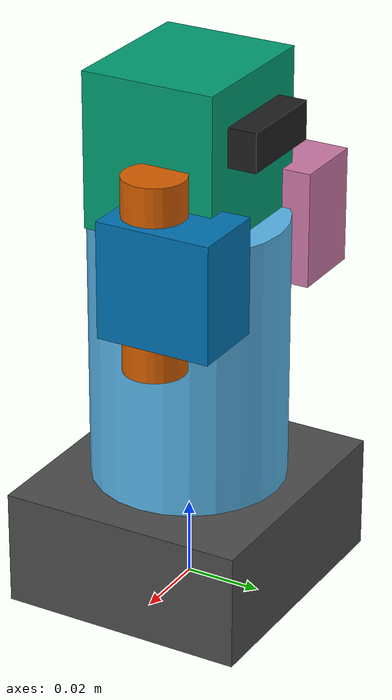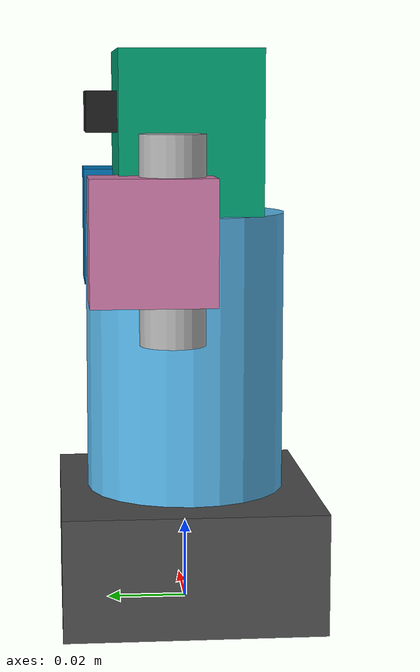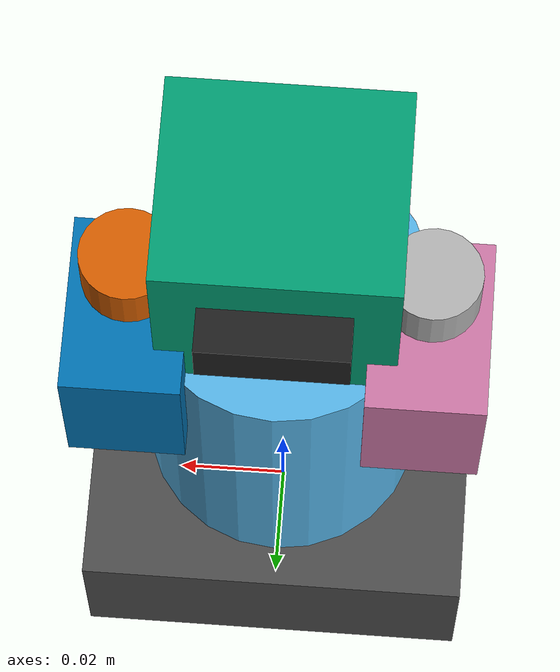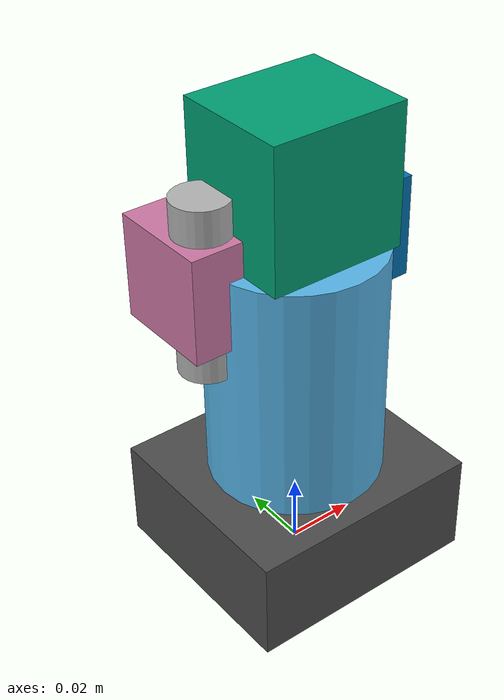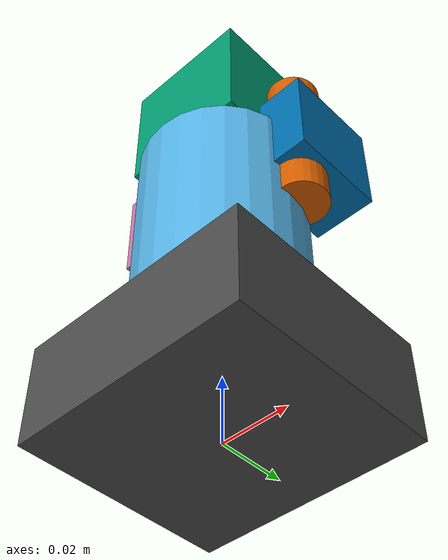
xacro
<?xml version="1.0"?>
<!--
  ElectronBot URDF (xacro 参数化版本)
  使用 materials.xacro 中定义的宏构建，支持参数化调整
-->
<robot name="electronbot" xmlns:xacro="http://www.ros.org/wiki/xacro">
  <xacro:include filename="materials.xacro"/>

  <!-- ============ 根连杆: base_link ============ -->
  <link name="base_link">
    <visual>
      <origin xyz="0 0 0.015" rpy="0 0 0"/>
      <geometry><box size="0.07 0.064 0.03"/></geometry>
      <material name="dark_grey"/>
    </visual>
    <collision>
      <origin xyz="0 0 0.015" rpy="0 0 0"/>
      <geometry><box size="0.07 0.064 0.03"/></geometry>
    </collision>
    <xacro:box_inertial mass="${base_mass}" x="0.07" y="0.064" z="0.03"/>
  </link>

  <!-- ============ 躯干: body (Y轴腰部旋转) ============ -->
  <xacro:robot_joint name="body_joint"
    parent="base_link" child="body"
    axis="0 1 0" lower="-1.5708" upper="1.5708"
    effort="2.0" velocity="3.14"
    origin_xyz="0 0 0.03" origin_rpy="0 0 0"/>

  <link name="body">
    <visual>
      <origin xyz="0 0 0.035" rpy="0 0 0"/>
      <geometry><cylinder radius="0.025" length="0.07"/></geometry>
      <material name="body_color"/>
    </visual>
    <collision>
      <origin xyz="0 0 0.035" rpy="0 0 0"/>
      <geometry><cylinder radius="0.025" length="0.07"/></geometry>
    </collision>
    <xacro:box_inertial mass="${body_mass}" x="0.05" y="0.05" z="0.07"/>
  </link>

  <!-- ============ 头部: head (X轴俯仰) ============ -->
  <xacro:robot_joint name="head_joint"
    parent="body" child="head"
    axis="1 0 0" lower="-0.2618" upper="0.2618"
    effort="1.0" velocity="3.14"
    origin_xyz="0 0 0.07" origin_rpy="0 0 0"/>

  <link name="head">
    <visual>
      <origin xyz="0 0 0.02" rpy="0 0 0"/>
      <geometry><box size="0.04 0.035 0.04"/></geometry>
      <material name="head_color"/>
    </visual>
    <collision>
      <origin xyz="0 0 0.02" rpy="0 0 0"/>
      <geometry><box size="0.04 0.035 0.04"/></geometry>
    </collision>
    <xacro:box_inertial mass="${head_mass}" x="0.04" y="0.035" z="0.04"/>
  </link>

  <!-- D435 相机 (头部前方) -->
  <xacro:d435_camera parent="head" name="d435"
    xyz="0 0.0175 0.025" rpy="0 0 0"/>

  <!-- ============ 左臂链 ============ -->
  <xacro:robot_joint name="left_shoulder_joint"
    parent="body" child="left_shoulder"
    axis="1 0 0" lower="-0.3491" upper="3.1416"
    effort="1.0" velocity="3.14"
    origin_xyz="0.025 0 0.065" origin_rpy="0 0 0"/>

  <link name="left_shoulder">
    <visual>
      <origin xyz="0 0.01 0" rpy="0 0 0"/>
      <geometry><box size="0.02 0.03 0.03"/></geometry>
      <material name="arm_color"/>
    </visual>
    <collision>
      <origin xyz="0 0.01 0" rpy="0 0 0"/>
      <geometry><box size="0.02 0.03 0.03"/></geometry>
    </collision>
    <xacro:box_inertial mass="${shoulder_mass}" x="0.02" y="0.03" z="0.03"/>
  </link>

  <xacro:robot_joint name="left_arm_roll_joint"
    parent="left_shoulder" child="left_arm"
    axis="0 0 1" lower="0" upper="0.5236"
    effort="1.0" velocity="3.14"
    origin_xyz="0 0.03 0" origin_rpy="0 0 0"/>

  <link name="left_arm">
    <visual>
      <origin xyz="0 -0.025 0" rpy="0 0 0"/>
      <geometry><cylinder radius="0.008" length="0.05"/></geometry>
      <material name="arm_color"/>
    </visual>
    <collision>
      <origin xyz="0 -0.025 0" rpy="0 0 0"/>
      <geometry><cylinder radius="0.008" length="0.05"/></geometry>
    </collision>
    <xacro:box_inertial mass="${arm_mass}" x="0.016" y="0.05" z="0.016"/>
  </link>

  <!-- ============ 右臂链 ============ -->
  <xacro:robot_joint name="right_shoulder_joint"
    parent="body" child="right_shoulder"
    axis="1 0 0" lower="-0.3491" upper="3.1416"
    effort="1.0" velocity="3.14"
    origin_xyz="-0.025 0 0.065" origin_rpy="0 0 0"/>

  <link name="right_shoulder">
    <visual>
      <origin xyz="0 0.01 0" rpy="0 0 0"/>
      <geometry><box size="0.02 0.03 0.03"/></geometry>
      <material name="arm_color"/>
    </visual>
    <collision>
      <origin xyz="0 0.01 0" rpy="0 0 0"/>
      <geometry><box size="0.02 0.03 0.03"/></geometry>
    </collision>
    <xacro:box_inertial mass="${shoulder_mass}" x="0.02" y="0.03" z="0.03"/>
  </link>

  <xacro:robot_joint name="right_arm_roll_joint"
    parent="right_shoulder" child="right_arm"
    axis="0 0 1" lower="0" upper="0.5236"
    effort="1.0" velocity="3.14"
    origin_xyz="0 0.03 0" origin_rpy="0 0 0"/>

  <link name="right_arm">
    <visual>
      <origin xyz="0 -0.025 0" rpy="0 0 0"/>
      <geometry><cylinder radius="0.008" length="0.05"/></geometry>
      <material name="arm_color"/>
    </visual>
    <collision>
      <origin xyz="0 -0.025 0" rpy="0 0 0"/>
      <geometry><cylinder radius="0.008" length="0.05"/></geometry>
    </collision>
    <xacro:box_inertial mass="${arm_mass}" x="0.016" y="0.05" z="0.016"/>
  </link>

</robot>

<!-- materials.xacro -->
<robot xmlns:xacro="http://www.ros.org/wiki/xacro">

  <!-- ============ 连杆质量定义 (单位: kg) ============ -->
  <xacro:property name="base_mass" value="0.15"/>
  <xacro:property name="body_mass" value="0.12"/>
  <xacro:property name="head_mass" value="0.08"/>
  <xacro:property name="shoulder_mass" value="0.03"/>
  <xacro:property name="arm_mass" value="0.05"/>

  <!-- ============ 默认颜色 ============ -->
  <xacro:property name="base_color" value="0.2 0.2 0.2 1.0"/>
  <xacro:property name="body_color" value="0.9 0.9 0.9 1.0"/>
  <xacro:property name="head_color" value="0.3 0.3 0.3 1.0"/>
  <xacro:property name="arm_color" value="0.7 0.7 0.7 1.0"/>

  <!-- ============ 惯性宏: Box ============ -->
  <xacro:macro name="box_inertial" params="mass x y z">
    <!-- 简化处理: 将连杆视为均质长方体计算惯性张量 -->
    <inertial>
      <origin xyz="0 0 0" rpy="0 0 0"/>
      <mass value="${mass}"/>
      <inertia
        ixx="${mass / 12.0 * (y*y + z*z)}"
        iyy="${mass / 12.0 * (x*x + z*z)}"
        izz="${mass / 12.0 * (x*x + y*y)}"
        ixy="0.0" ixz="0.0" iyz="0.0"/>
    </inertial>
  </xacro:macro>

  <!-- ============ 回转关节宏 (revolute) ============ -->
  <xacro:macro name="robot_joint"
    params="name parent child axis lower upper effort velocity origin_xyz origin_rpy">
    <joint name="${name}" type="revolute">
      <origin xyz="${origin_xyz}" rpy="${origin_rpy}"/>
      <parent link="${parent}"/>
      <child link="${child}"/>
      <axis xyz="${axis}"/>
      <limit lower="${lower}" upper="${upper}"
             effort="${effort}" velocity="${velocity}"/>
      <dynamics damping="0.5" friction="0.1"/>
    </joint>
  </xacro:macro>

  <!-- ============ 传感器宏: IMU ============ -->
  <xacro:macro name="imu_sensor" params="link reference">
    <gazebo reference="${reference}">
      <sensor name="imu_sensor_${link}" type="imu">
        <always_on>true</always_on>
        <update_rate>100.0</update_rate>
        <imu>
          <angular_velocity>
            <x><noise type="gaussian" mean="0.0" stddev="1e-4"/></x>
            <y><noise type="gaussian" mean="0.0" stddev="1e-4"/></y>
            <z><noise type="gaussian" mean="0.0" stddev="1e-4"/></z>
          </angular_velocity>
          <linear_acceleration>
            <x><noise type="gaussian" mean="0.0" stddev="1e-2"/></x>
            <y><noise type="gaussian" mean="0.0" stddev="1e-2"/></y>
            <z><noise type="gaussian" mean="0.0" stddev="1e-2"/></z>
          </linear_acceleration>
        </imu>
      </sensor>
    </gazebo>
  </xacro:macro>

  <!-- ============ D435 仿真相机 ============ -->
  <xacro:macro name="d435_camera" params="parent name xyz rpy">
    <joint name="${name}_joint" type="fixed">
      <origin xyz="${xyz}" rpy="${rpy}"/>
      <parent link="${parent}"/>
      <child link="${name}_link"/>
    </joint>
    <link name="${name}_link">
      <visual>
        <origin xyz="0 0 0" rpy="0 0 0"/>
        <geometry>
          <box size="0.025 0.015 0.01"/>
        </geometry>
        <material name="black"/>
      </visual>
      <inertial>
        <mass value="0.01"/>
        <inertia ixx="1e-6" iyy="1e-6" izz="1e-6" ixy="0" ixz="0" iyz="0"/>
      </inertial>
    </link>

    <gazebo reference="${name}_link">
      <sensor name="${name}_rgb" type="camera">
        <always_on>true</always_on>
        <update_rate>30.0</update_rate>
        <visualize>true</visualize>
        <camera>
          <horizontal_fov>1.089</horizontal_fov>
          <image>
            <width>240</width>
            <height>240</height>
            <format>R8G8B8</format>
          </image>
          <clip><near>0.01</near><far>10.0</far></clip>
        </camera>
      </sensor>
      <sensor name="${name}_depth" type="depth">
        <always_on>true</always_on>
        <update_rate>30.0</update_rate>
        <camera>
          <horizontal_fov>1.089</horizontal_fov>
          <image>
            <width>240</width>
            <height>240</height>
            <format>R_FLOAT32</format>
          </image>
          <clip><near>0.01</near><far>10.0</far></clip>
        </camera>
      </sensor>
    </gazebo>
  </xacro:macro>

</robot>
